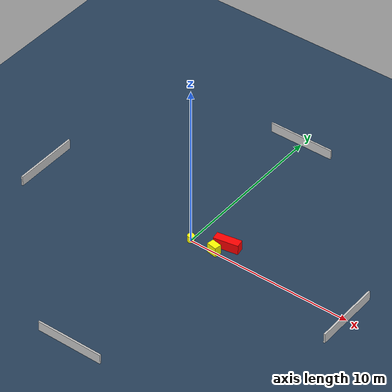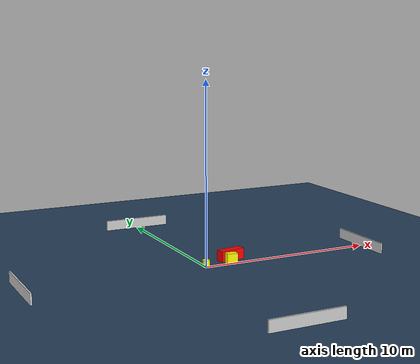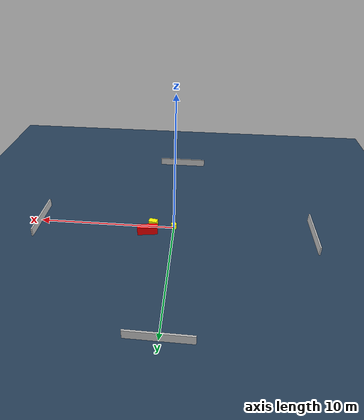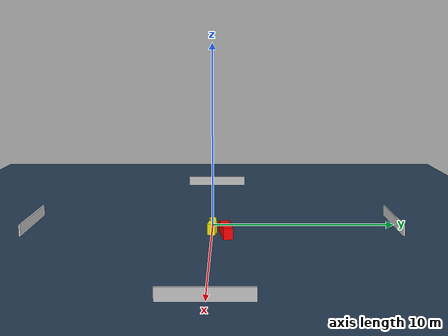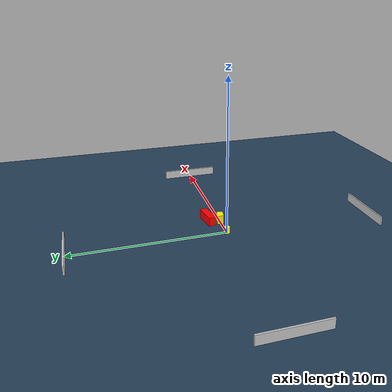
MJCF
<?xml version="1.0" ?>
<mujoco model="generated_environment">
  <option timestep="0.01" integrator="RK4" cone="elliptic"/>
  <default>
    <geom density="1"/>
  </default>
  <asset>
    <texture builtin="gradient" height="3072" name="skybox" rgb1="0.3 0.5 0.7" rgb2="0 0 0" type="skybox" width="512"/>
    <texture builtin="checker" height="300" name="groundplane" rgb1="0.2 0.3 0.4" rgb2="0.1 0.2 0.3" type="2d" width="300"/>
    <material name="groundplane" reflectance="0.2" texrepeat="5 5" texture="groundplane"/>
  </asset>
  <worldbody>
    <light dir="0 0 -1" directional="true" pos="0 0 1.5"/>
    <geom condim="3" friction="0.5 0.005 0.001" material="groundplane" name="floor" pos="0 0 0" size="0 0 0.05" type="plane"/>
    <body name="walls">
      <geom name="wall_1" condim="4" pos="-10.0 0.0 0.3" rgba="0.800000011920929 0.800000011920929 0.800000011920929 1.0" size="0.05 2.0 0.3" type="box"/>
      <geom name="wall_2" condim="4" pos="10.0 0.0 0.3" rgba="0.800000011920929 0.800000011920929 0.800000011920929 1.0" size="0.05 2.0 0.3" type="box"/>
      <geom name="wall_3" condim="4" pos="0.0 -10.0 0.3" rgba="0.800000011920929 0.800000011920929 0.800000011920929 1.0" size="2.0 0.05 0.3" type="box"/>
      <geom name="wall_4" condim="4" pos="0.0 10.0 0.3" rgba="0.800000011920929 0.800000011920929 0.800000011920929 1.0" size="2.0 0.05 0.3" type="box"/>
    </body>
    <body name="robot">
      <joint name="joint_x" type="slide" pos="0 0 0" axis="1 0 0"/>
      <joint name="joint_y" type="slide" pos="0 0 0" axis="0 1 0"/>
      <geom name="robot" type="cylinder" pos="0.0 0.0 0.2" size="0.2 0.2 0.0" mass="5.0" friction="1.0 0.005 0.0001" condim="4" rgba="1.0 1.0 0.0 1.0"/>
    </body>
    <body name="obstacle_1_movable">
      <geom name="obstacle_1_movable" condim="4" pos="1.5277655247813224 0.005585130294797247 0.3" euler="0 0 80.36517439270254" friction="0.0 0.005 0.001" rgba="1.0 1.0 0.0 1.0" size="0.2127387566683116 0.3033069481785752 0.3" type="box" mass="0.1"/>
      <joint type="free"/>
    </body>
    <body name="obstacle_2_static">
      <geom name="obstacle_2_static" condim="4" pos="1.855159879754041 0.7425979625627773 0.3" euler="0 0 189.8749314683165" friction="0.0 0.005 0.001" rgba="1.0 0.0 0.0 1.0" size="0.7325141610051618 0.2492186160899847 0.3" type="box"/>
    </body>
  </worldbody>
  <actuator>
    <motor name="actuator_x" joint="joint_x" gear="1" ctrlrange="-1 1"/>
    <motor name="actuator_y" joint="joint_y" gear="1" ctrlrange="-1 1"/>
  </actuator>
</mujoco>
